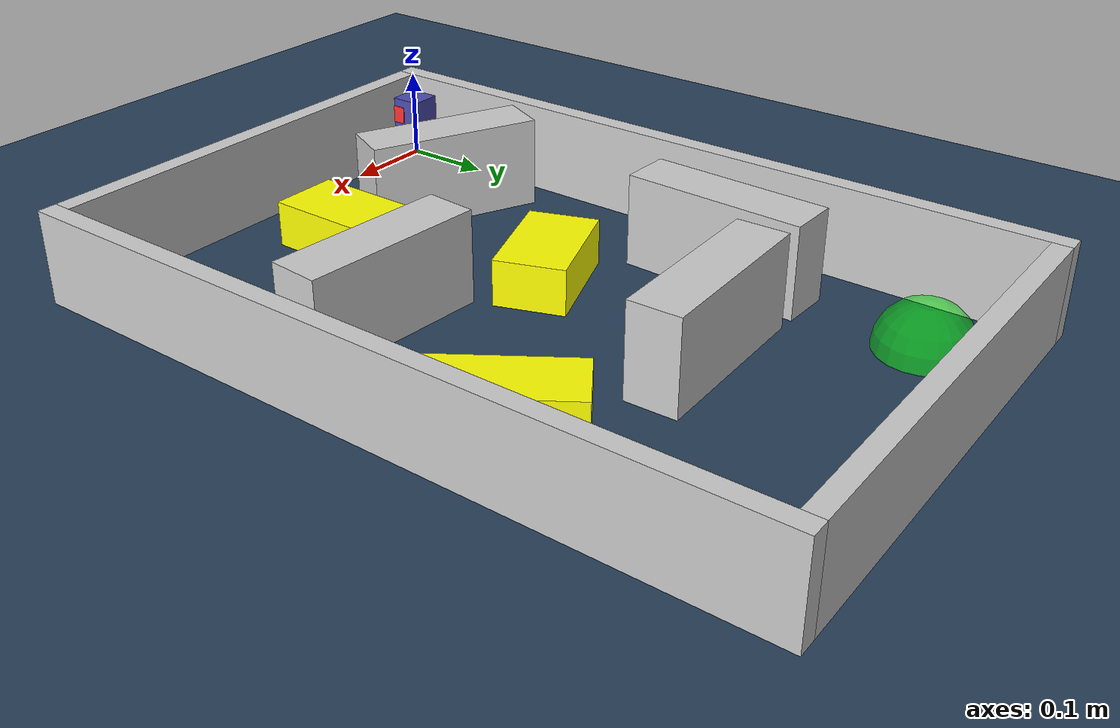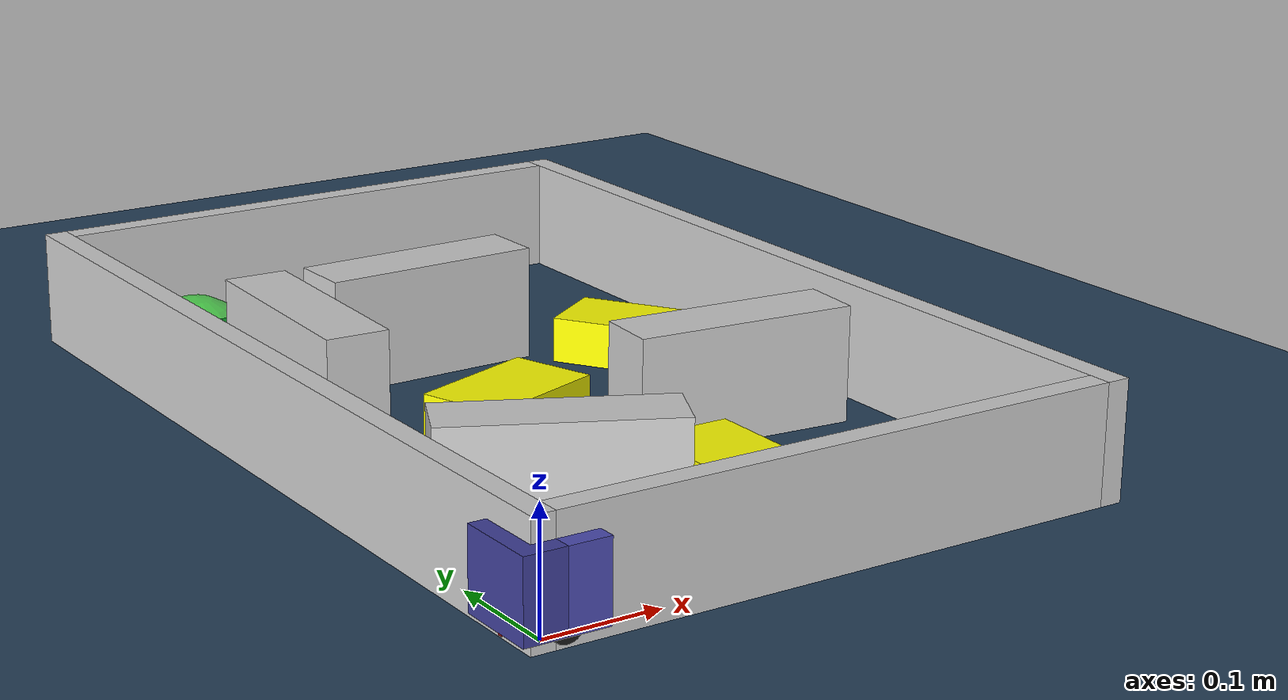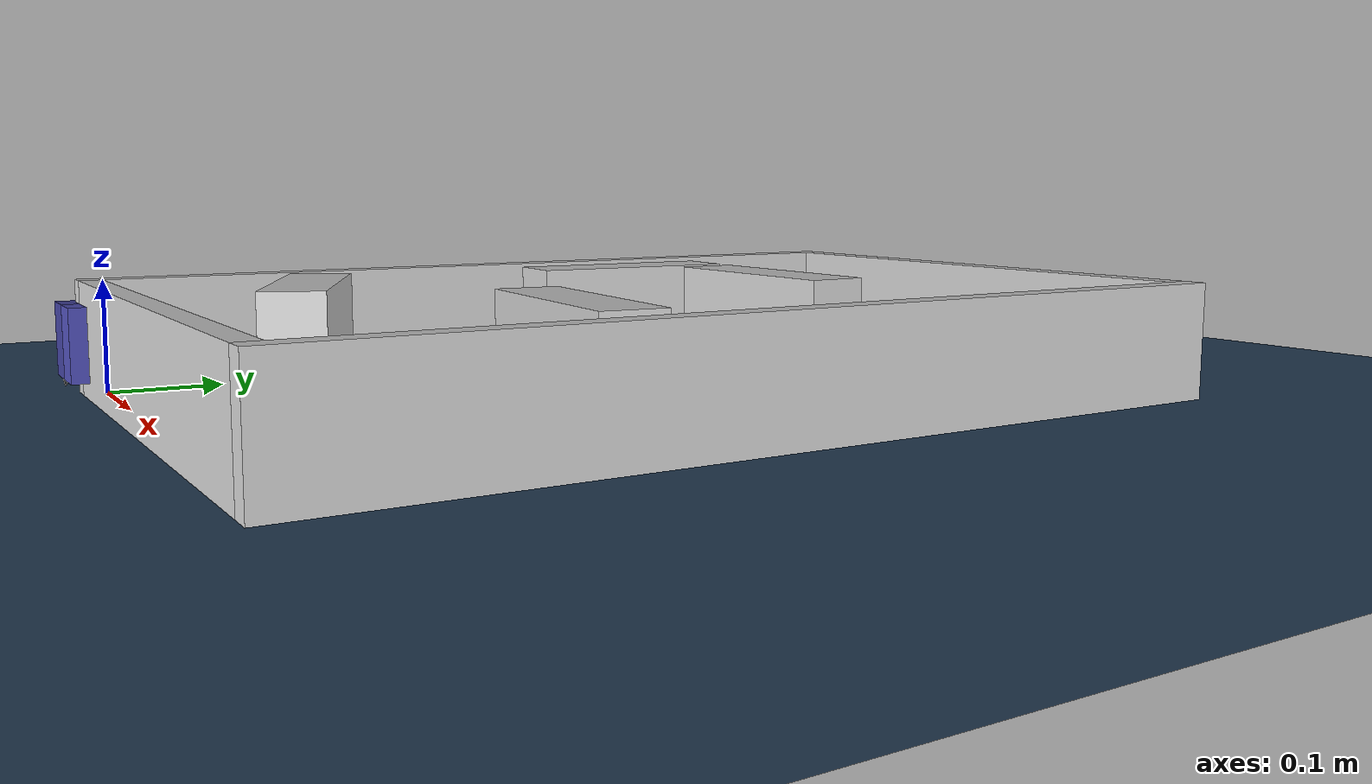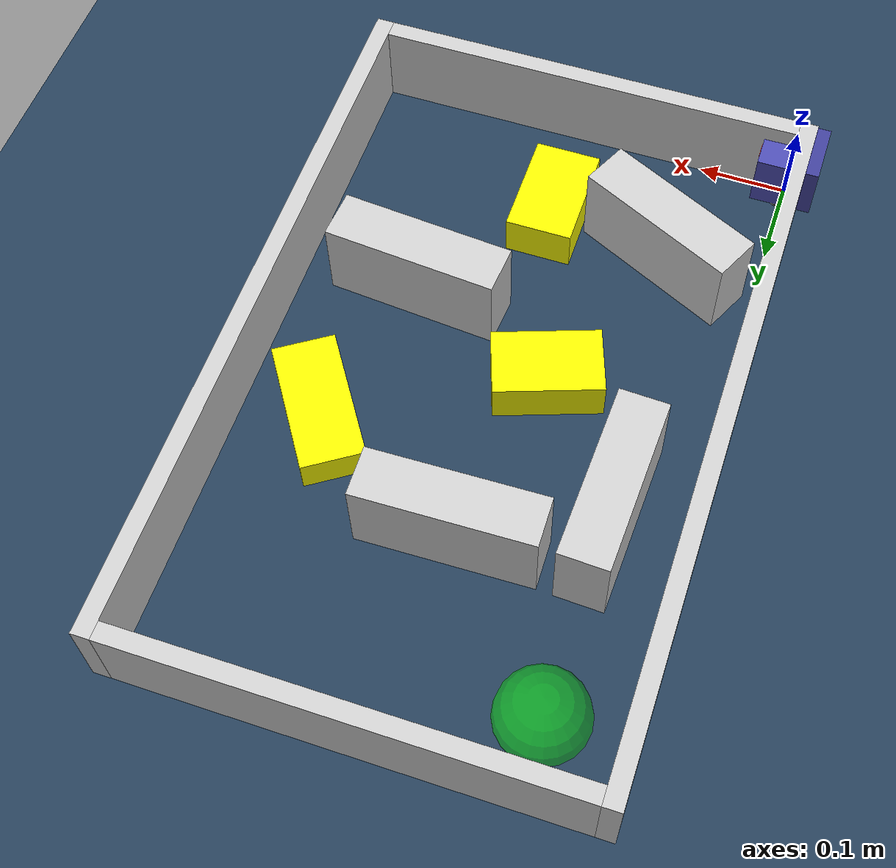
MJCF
<?xml version="1.0" ?>
<mujoco model="generated_environment">
  <option cone="elliptic" integrator="implicitfast" iterations="100" timestep="0.002"/>
  <default>
    <geom density="1"/>
  </default>
  <asset>
    <texture builtin="gradient" height="3072" rgb1="0.3 0.5 0.7" rgb2="0 0 0" type="skybox" width="512"/>
    <texture builtin="checker" height="300" mark="edge" markrgb="0.8 0.8 0.8" name="groundplane" rgb1="0.2 0.3 0.4" rgb2="0.1 0.2 0.3" type="2d" width="300"/>
    <material name="groundplane" reflectance="0.2" texrepeat="5 5" texture="groundplane" texuniform="true"/>
    <material name="robot" rgba="1.0 1.0 0.0 1.0"/>
  </asset>
  <include file="../../../test_xml/little-car-modeling-package/assets/mjcf/little_car.xml"/>
  <worldbody>
    <light dir="0 0 -1" directional="true" pos="0 0 1.5"/>
    <geom condim="4" friction="0.5 0.005 0.001" material="groundplane" name="floor" size="0 0 0.05" type="plane"/>
    <body name="walls">
      <geom name="wall_1" condim="4" pos="-0.01 0.3875 0.05" friction="1 0.005 0.0001" rgba="0.800000011920929 0.800000011920929 0.800000011920929 1.0" size="0.01 0.40750000000000003 0.05" type="box"/>
      <geom name="wall_2" condim="4" pos="0.5 0.3875 0.05" friction="1 0.005 0.0001" rgba="0.800000011920929 0.800000011920929 0.800000011920929 1.0" size="0.01 0.40750000000000003 0.05" type="box"/>
      <geom name="wall_3" condim="4" pos="0.245 -0.01 0.05" friction="1 0.005 0.0001" rgba="0.800000011920929 0.800000011920929 0.800000011920929 1.0" size="0.245 0.01 0.05" type="box"/>
      <geom name="wall_4" condim="4" pos="0.245 0.785 0.05" friction="1 0.005 0.0001" rgba="0.800000011920929 0.800000011920929 0.800000011920929 1.0" size="0.245 0.01 0.05" type="box"/>
    </body>
    <body name="obstacle_1_movable">
      <geom name="obstacle_1_movable" condim="4" pos="0.4032842544911281 0.4592306041631655 0.02" quat="-0.2897242340298379 0 0 0.9571101651407866" friction="1 0.005 0.0001" rgba="1 1 0 1" size="0.035 0.075 0.02" type="box" mass="0.1"/>
      <joint type="free"/>
    </body>
    <body name="obstacle_2_movable">
      <geom name="obstacle_2_movable" condim="4" pos="0.18650374313651752 0.34307448518894595 0.025" quat="-0.8168935105387624 0 0 0.5767885162168687" friction="1 0.005 0.0001" rgba="1 1 0 1" size="0.0375 0.06 0.025" type="box" mass="0.1"/>
      <joint type="free"/>
    </body>
    <body name="obstacle_3_movable">
      <geom name="obstacle_3_movable" condim="4" pos="0.2474394662696504 0.12196268236968144 0.025" quat="8.299968251781418e-05 0 0 0.9999999965555263" friction="1 0.005 0.0001" rgba="1 1 0 1" size="0.0375 0.06 0.025" type="box" mass="0.1"/>
      <joint type="free"/>
    </body>
    <body name="wall_5">
      <geom name="wall_5" condim="4" pos="0.07675609805276101 0.4808621829519067 0.05" quat="-0.9998186639462684 0 0 0.01904308863338419" friction="1 0.005 0.0001" rgba="0.800000011920929 0.800000011920929 0.800000011920929 1.0" size="0.0275 0.0975 0.05" type="box"/>
    </body>
    <body name="wall_6">
      <geom name="wall_6" condim="4" pos="0.22340465274178625 0.551155179636173 0.05" quat="0.6985482706665203 0 0 0.7155629347225958" friction="1 0.005 0.0001" rgba="0.800000011920929 0.800000011920929 0.800000011920929 1.0" size="0.0275 0.0975 0.05" type="box"/>
    </body>
    <body name="wall_7">
      <geom name="wall_7" condim="4" pos="0.35554001801706975 0.2729323743442339 0.05" quat="0.7351467331120576 0 0 0.6779080179454062" friction="1 0.005 0.0001" rgba="0.800000011920929 0.800000011920929 0.800000011920929 1.0" size="0.0275 0.0975 0.05" type="box"/>
    </body>
    <body name="wall_8">
      <geom name="wall_8" condim="4" pos="0.10921795803405823 0.14676891775187367 0.05" quat="-0.9755262111152353 0 0 0.21988317677156075" friction="1 0.005 0.0001" rgba="0.800000011920929 0.800000011920929 0.800000011920929 1.0" size="0.095 0.0275 0.05" type="box"/>
    </body>
    <site name="goal" type="sphere" size="0.05 0.05 0.05" rgba="0 1 0 0.5" pos="0.08 0.7 0.0"/>
  </worldbody>
</mujoco>

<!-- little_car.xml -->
<mujoco model="little_car">
  <compiler angle="radian" autolimits="true"/>
  <default>
    <geom condim="4"/>
    <joint damping="0.01" armature="0.0001"/>
  </default>
  <worldbody>
    <body name="car" pos="0 0 0.010000">
      <freejoint name="car_freejoint"/>
      <inertial pos="0.000000 0 0.037500" mass="0.350000"
                diaginertia="0.000266 0.000266 0.000286"/>
      <geom name="front_chassis_collision" type="box" pos="0.017500 0 0.037500"
            size="0.017500 0.035000 0.032500"
            rgba="0.3 0.3 0.7 1"/>
      <geom name="rear_chassis_collision" type="box" pos="-0.017500 0 0.037500"
            size="0.017500 0.035000 0.032500"
            rgba="0.25 0.25 0.6 1"/>
      <geom name="front_marker" type="box" pos="0.034000 0 0.050500"
            size="0.002000 0.015000 0.010000"
            rgba="1.0 0.2 0.2 1" contype="0" conaffinity="0"/>

      <body name="rear_support_body" pos="-0.030000 0.000000 0.002500">
        <joint name="rear_caster_joint" type="ball" damping="0.0001"/>
        <inertial pos="0 0 0" mass="0.025000"
                  diaginertia="0.000001 0.000001 0.000001"/>
        <geom name="rear_support" type="sphere"
              pos="0 0 0"
              size="0.002500"
              friction="0.000000 0.000000 0.000000"
              rgba="0.7 0.1 0.1 1"/>
      </body>

      <body name="front_support_body" pos="0.030000 0.000000 0.002500">
        <joint name="front_caster_joint" type="ball" damping="0.0001"/>
        <inertial pos="0 0 0" mass="0.025000"
                  diaginertia="0.000001 0.000001 0.000001"/>
        <geom name="front_support" type="sphere"
              pos="0 0 0"
              size="0.002500"
              friction="0.000000 0.000000 0.000000"
              rgba="0.1 0.7 0.1 1"/>
      </body>

      <body name="left_wheel" pos="0.000000 0.034000 0.015000">
        <inertial pos="0 0 0" mass="0.050000"
                  diaginertia="0.000003 0.000006 0.000003"/>
        <joint name="left_wheel_joint" type="hinge" axis="0 1 0"/>
        <geom name="left_wheel_collision" type="cylinder" size="0.015000 0.000500"
              euler="1.57079632679 0 0" rgba="0.1 0.1 0.1 1"/>
      </body>

      <body name="right_wheel" pos="0.000000 -0.034000 0.015000">
        <inertial pos="0 0 0" mass="0.050000"
                  diaginertia="0.000003 0.000006 0.000003"/>
        <joint name="right_wheel_joint" type="hinge" axis="0 1 0"/>
        <geom name="right_wheel_collision" type="cylinder" size="0.015000 0.000500"
              euler="1.57079632679 0 0" rgba="0.1 0.1 0.1 1"/>
      </body>
    </body>
  </worldbody>
  <contact>
    <exclude body1="car" body2="left_wheel"/>
    <exclude body1="car" body2="right_wheel"/>
  </contact>
  <actuator>
    <velocity name="left_wheel_drive" joint="left_wheel_joint"
              ctrlrange="-25.000000 25.000000"
              kv="0.750000" forcerange="-0.500000 0.500000"/>
    <velocity name="right_wheel_drive" joint="right_wheel_joint"
              ctrlrange="-25.000000 25.000000"
              kv="0.750000" forcerange="-0.500000 0.500000"/>
  </actuator>
</mujoco>
